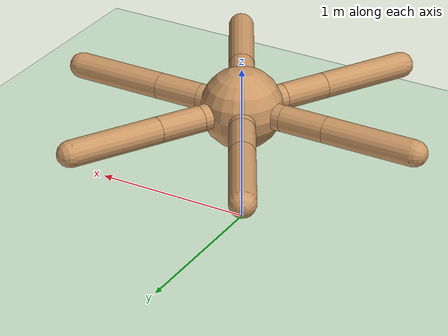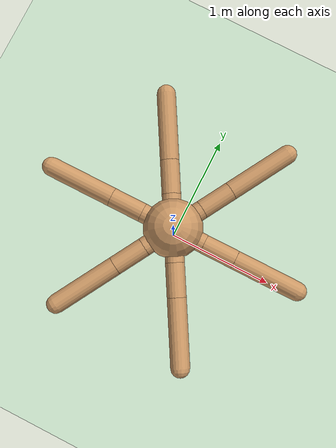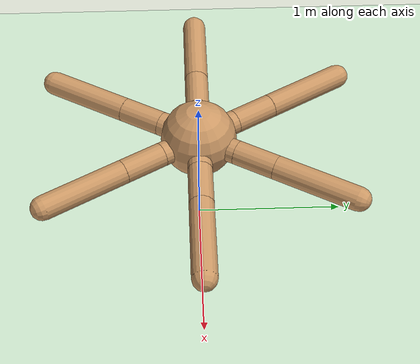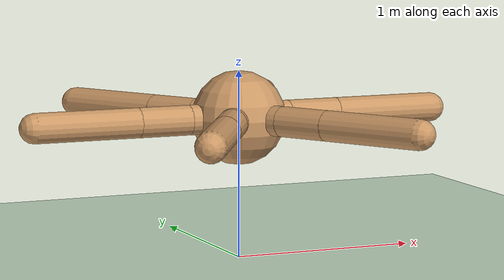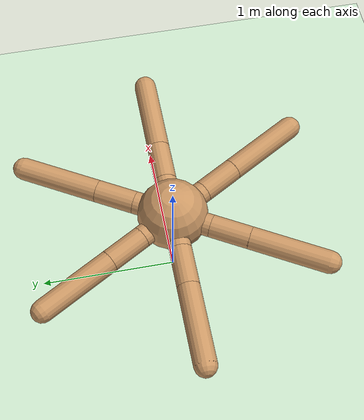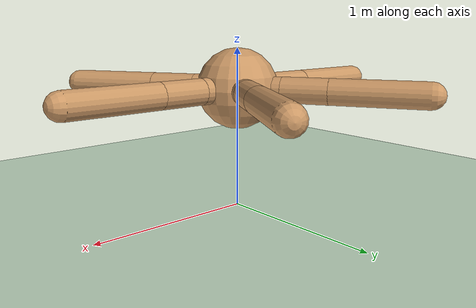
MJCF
<mujoco model="ant">
  <compiler angle="degree" coordinate="local" inertiafromgeom="true" />
  <option integrator="RK4" timestep="0.01" />
  <custom>
    <numeric data="0.0 0.0 0.55 1.0 0.0 0.0 0.0 0.0 1.0 0.0 -1.0 0.0 -1.0 0.0 1.0" name="init_qpos" />
    <numeric data="6" name="num_legs" />
  </custom>
  <default>
    <joint armature="1" damping="1" limited="true" />
    <geom conaffinity="0" condim="3" density="5.0" friction="1 0.5 0.5" margin="0.01" rgba="0.8 0.6 0.4 1" />
  </default>
  <asset>
    <texture builtin="gradient" height="100" rgb1="1 1 1" rgb2="0 0 0" type="skybox" width="100" />
    <texture builtin="flat" height="1278" mark="cross" markrgb="1 1 1" name="texgeom" random="0.01" rgb1="0.8 0.6 0.4" rgb2="0.8 0.6 0.4" type="cube" width="127" />
    <texture builtin="checker" height="100" name="texplane" rgb1="0 0 0" rgb2="0.8 0.8 0.8" type="2d" width="100" />
    <material name="MatPlane" reflectance="0.5" shininess="1" specular="1" texrepeat="60 60" texture="texplane" />
    <material name="geom" texture="texgeom" texuniform="true" />
  </asset>
  <worldbody>
    <light cutoff="100" diffuse="1 1 1" dir="-0 0 -1.3" directional="true" exponent="1" pos="0 0 1.3" specular=".1 .1 .1" />
    <geom conaffinity="1" condim="3" material="MatPlane" name="floor" pos="0 0 0" rgba="0.8 0.9 0.8 1" size="40 40 40" type="plane" />
    <body name="torso" pos="0 0 0.75">
      <camera name="track" mode="trackcom" pos="0 0 4.0" xyaxes="1 0 0 0 1 0" />
      <camera name="birdseye" mode="fixed" pos="0 0 3.0" zaxis="0 0 -1" />
      <camera name="side" mode="trackcom" pos="0 -3 0.3" xyaxes="1 0 0 0 0 1" />
      <geom name="torso_geom" pos="0 0 0" size="0.25" type="sphere" />
      <joint armature="0" damping="0" limited="false" margin="0.01" name="root" pos="0 0 0" type="free" />

      <body name="leg_1" pos="0 0 0">
                <geom fromto="0.0 0.0 0.0 0.2828 0.0000 0.0" name="aux_1_geom" size="0.08" type="capsule" />
                <body name="aux_1" pos="0.2828 0.0000 0">
                    <joint axis="0 0 1" name="hip_1" pos="0.0 0.0 0.0" range="-30 30" type="hinge" />
                    <geom fromto="0.0 0.0 0.0 0.2828 0.0000 0.0" name="leg_1_geom" size="0.08" type="capsule" />
                    <body pos="0.2828 0.0000 0">
                        <joint axis="-1 1 0" name="ankle_1" pos="0.0 0.0 0.0" range="30 70" type="hinge" />
                        <geom fromto="0.0 0.0 0.0 0.5657 0.0000 0.0" name="ankle_1_geom" size="0.08" type="capsule" />
                    </body>
                </body>
            </body><body name="leg_2" pos="0 0 0">
                <geom fromto="0.0 0.0 0.0 0.1414 0.2449 0.0" name="aux_2_geom" size="0.08" type="capsule" />
                <body name="aux_2" pos="0.1414 0.2449 0">
                    <joint axis="0 0 1" name="hip_2" pos="0.0 0.0 0.0" range="-30 30" type="hinge" />
                    <geom fromto="0.0 0.0 0.0 0.1414 0.2449 0.0" name="leg_2_geom" size="0.08" type="capsule" />
                    <body pos="0.1414 0.2449 0">
                        <joint axis="-1 1 0" name="ankle_2" pos="0.0 0.0 0.0" range="30 70" type="hinge" />
                        <geom fromto="0.0 0.0 0.0 0.2828 0.4899 0.0" name="ankle_2_geom" size="0.08" type="capsule" />
                    </body>
                </body>
            </body><body name="leg_3" pos="0 0 0">
                <geom fromto="0.0 0.0 0.0 -0.1414 0.2449 0.0" name="aux_3_geom" size="0.08" type="capsule" />
                <body name="aux_3" pos="-0.1414 0.2449 0">
                    <joint axis="0 0 1" name="hip_3" pos="0.0 0.0 0.0" range="-30 30" type="hinge" />
                    <geom fromto="0.0 0.0 0.0 -0.1414 0.2449 0.0" name="leg_3_geom" size="0.08" type="capsule" />
                    <body pos="-0.1414 0.2449 0">
                        <joint axis="1 1 0" name="ankle_3" pos="0.0 0.0 0.0" range="-70 -30" type="hinge" />
                        <geom fromto="0.0 0.0 0.0 -0.2828 0.4899 0.0" name="ankle_3_geom" size="0.08" type="capsule" />
                    </body>
                </body>
            </body><body name="leg_4" pos="0 0 0">
                <geom fromto="0.0 0.0 0.0 -0.2828 0.0000 0.0" name="aux_4_geom" size="0.08" type="capsule" />
                <body name="aux_4" pos="-0.2828 0.0000 0">
                    <joint axis="0 0 1" name="hip_4" pos="0.0 0.0 0.0" range="-30 30" type="hinge" />
                    <geom fromto="0.0 0.0 0.0 -0.2828 0.0000 0.0" name="leg_4_geom" size="0.08" type="capsule" />
                    <body pos="-0.2828 0.0000 0">
                        <joint axis="1 1 0" name="ankle_4" pos="0.0 0.0 0.0" range="-70 -30" type="hinge" />
                        <geom fromto="0.0 0.0 0.0 -0.5657 0.0000 0.0" name="ankle_4_geom" size="0.08" type="capsule" />
                    </body>
                </body>
            </body><body name="leg_5" pos="0 0 0">
                <geom fromto="0.0 0.0 0.0 -0.1414 -0.2449 0.0" name="aux_5_geom" size="0.08" type="capsule" />
                <body name="aux_5" pos="-0.1414 -0.2449 0">
                    <joint axis="0 0 1" name="hip_5" pos="0.0 0.0 0.0" range="-30 30" type="hinge" />
                    <geom fromto="0.0 0.0 0.0 -0.1414 -0.2449 0.0" name="leg_5_geom" size="0.08" type="capsule" />
                    <body pos="-0.1414 -0.2449 0">
                        <joint axis="-1 1 0" name="ankle_5" pos="0.0 0.0 0.0" range="-70 -30" type="hinge" />
                        <geom fromto="0.0 0.0 0.0 -0.2828 -0.4899 0.0" name="ankle_5_geom" size="0.08" type="capsule" />
                    </body>
                </body>
            </body><body name="leg_6" pos="0 0 0">
                <geom fromto="0.0 0.0 0.0 0.1414 -0.2449 0.0" name="aux_6_geom" size="0.08" type="capsule" />
                <body name="aux_6" pos="0.1414 -0.2449 0">
                    <joint axis="0 0 1" name="hip_6" pos="0.0 0.0 0.0" range="-30 30" type="hinge" />
                    <geom fromto="0.0 0.0 0.0 0.1414 -0.2449 0.0" name="leg_6_geom" size="0.08" type="capsule" />
                    <body pos="0.1414 -0.2449 0">
                        <joint axis="1 1 0" name="ankle_6" pos="0.0 0.0 0.0" range="30 70" type="hinge" />
                        <geom fromto="0.0 0.0 0.0 0.2828 -0.4899 0.0" name="ankle_6_geom" size="0.08" type="capsule" />
                    </body>
                </body>
            </body></body>
  </worldbody>
  <actuator>

    <motor ctrllimited="true" ctrlrange="-1.0 1.0" joint="hip_1" gear="150" /><motor ctrllimited="true" ctrlrange="-1.0 1.0" joint="ankle_1" gear="150" /><motor ctrllimited="true" ctrlrange="-1.0 1.0" joint="hip_2" gear="150" /><motor ctrllimited="true" ctrlrange="-1.0 1.0" joint="ankle_2" gear="150" /><motor ctrllimited="true" ctrlrange="-1.0 1.0" joint="hip_3" gear="150" /><motor ctrllimited="true" ctrlrange="-1.0 1.0" joint="ankle_3" gear="150" /><motor ctrllimited="true" ctrlrange="-1.0 1.0" joint="hip_4" gear="150" /><motor ctrllimited="true" ctrlrange="-1.0 1.0" joint="ankle_4" gear="150" /><motor ctrllimited="true" ctrlrange="-1.0 1.0" joint="hip_5" gear="150" /><motor ctrllimited="true" ctrlrange="-1.0 1.0" joint="ankle_5" gear="150" /><motor ctrllimited="true" ctrlrange="-1.0 1.0" joint="hip_6" gear="150" /><motor ctrllimited="true" ctrlrange="-1.0 1.0" joint="ankle_6" gear="150" /></actuator>
</mujoco>
